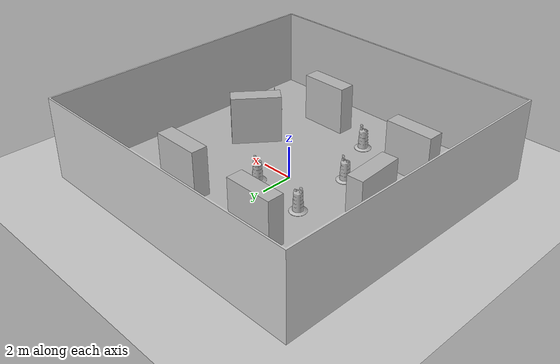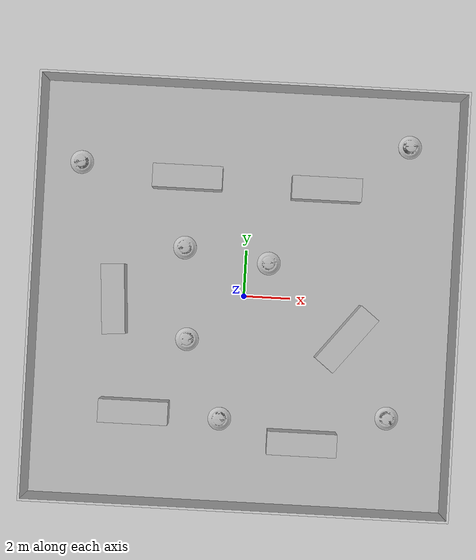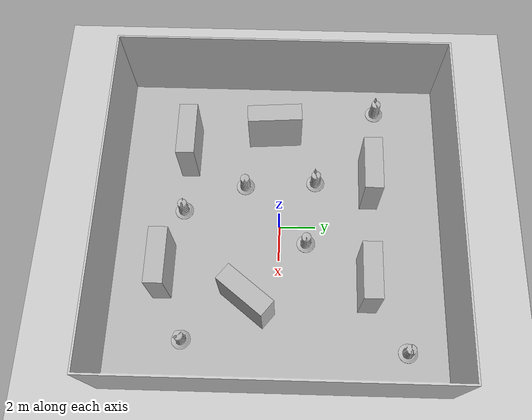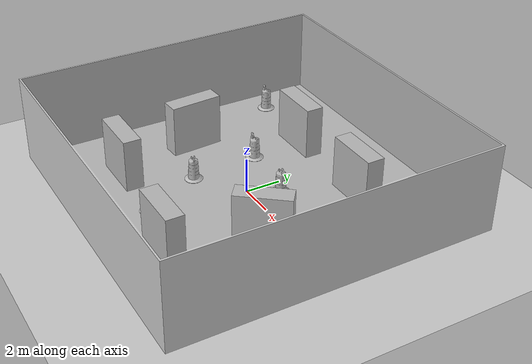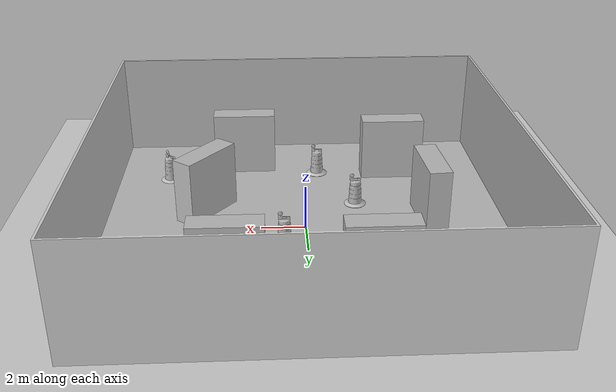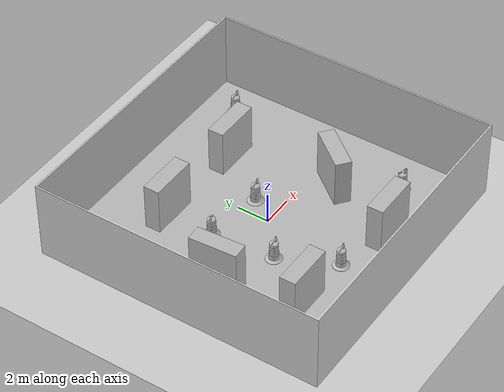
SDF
<sdf version="1.7">
 <world name="default">
  <light name="sun" type="directional">
   <pose>0 0 10 0 -0 0</pose>
   <diffuse>0.8 0.8 0.8 1</diffuse>
   <specular>0.2 0.2 0.2 1</specular>
   <attenuation>
    <range>1000</range>
    <constant>0.9</constant>
    <linear>0.01</linear>
    <quadratic>0.001</quadratic>
   </attenuation>
   <direction>-0.5 0.1 -0.9</direction>
   <spot><inner_angle>0</inner_angle><outer_angle>0</outer_angle><falloff>0</falloff></spot>
  </light>
  <light name="user_directional_light_0" type="directional">
   <pose>3.5 0.5 5 0 -0 0</pose>
   <diffuse>0.5 0.5 0.5 1</diffuse>
   <specular>0.1 0.1 0.1 1</specular>
   <direction>0.1 0.1 -0.9</direction>
   <attenuation>
    <range>20</range>
    <constant>0.5</constant>
    <linear>0.01</linear>
    <quadratic>0.001</quadratic>
   </attenuation>
   <spot><inner_angle>0</inner_angle><outer_angle>0</outer_angle><falloff>0</falloff></spot>
  </light>
  <model name="ground_plane">
   <static>1</static>
   <link name="link">
    <collision name="collision">
     <geometry><plane><normal>0 0 1</normal><size>100 100</size></plane></geometry>
     <surface><friction><ode><mu>100</mu><mu2>50</mu2></ode></friction></surface>
    </collision>
    <visual name="visual">
     <cast_shadows>0</cast_shadows>
     <geometry><plane><normal>0 0 1</normal><size>100 100</size></plane></geometry>
     <material>
      <script><uri>file://media/materials/scripts/gazebo.material</uri><name>Gazebo/Grey</name></script>
     </material>
    </visual>
   </link>
  </model>
  <plugin name="ros_interface_plugin" filename="librotors_gazebo_ros_interface_plugin.so"/>
  <plugin name="gazebo_ros_state" filename="libgazebo_ros_state.so"/>
  <physics type="ode">
   <real_time_update_rate>1000</real_time_update_rate>
   <max_step_size>0.001</max_step_size>
   <real_time_factor>1</real_time_factor>
   <ode>
    <solver>
     <type>quick</type>
     <iters>150</iters>
     <precon_iters>0</precon_iters>
     <sor>1.4</sor>
     <use_dynamic_moi_rescaling>1</use_dynamic_moi_rescaling>
    </solver>
    <constraints>
     <cfm>1e-05</cfm>
     <erp>0.2</erp>
     <contact_max_correcting_vel>2000</contact_max_correcting_vel>
     <contact_surface_layer>0.01</contact_surface_layer>
    </constraints>
   </ode>
  </physics>
  <model name="rtab_map_stage">
   <static>1</static>
   <link name="link">
    <collision name="collision">
     <geometry>
      <mesh><scale>1 1 1</scale><uri>model://rtab_map_stage/meshes/rtab_map_stage.stl</uri></mesh>
     </geometry>
     <surface><friction><ode><mu>1.2</mu><mu2>1.2</mu2></ode></friction></surface>
    </collision>
    <visual name="visual">
     <geometry>
      <mesh><scale>1 1 1</scale><uri>model://rtab_map_stage/meshes/rtab_map_state.dae</uri></mesh>
     </geometry>
    </visual>
   </link>
  </model>
  <model name="construction_barrel">
   <link name="link">
    <inertial>
     <pose>0 0 0.4 0 -0 0</pose>
     <mass>500</mass>
     <inertia><ixx>51.2096</ixx><iyy>51.2096</iyy><izz>25</izz><ixy>0</ixy><ixz>0</ixz><iyz>0</iyz></inertia>
    </inertial>
    <collision name="collision">
     <geometry><mesh><uri>model://construction_barrel/meshes/construction_barrel.dae</uri></mesh></geometry>
    </collision>
    <visual name="visual">
     <geometry><mesh><uri>model://construction_barrel/meshes/construction_barrel.dae</uri></mesh></geometry>
    </visual>
   </link>
   <pose>6.5 -5 0.08 0 0 -0.8</pose>
   <static>1</static>
  </model>
  <model name="construction_barrel1">
   <link name="link">
    <inertial>
     <pose>0 0 0.4 0 -0 0</pose>
     <mass>500</mass>
     <inertia><ixx>51.2096</ixx><iyy>51.2096</iyy><izz>25</izz><ixy>0</ixy><ixz>0</ixz><iyz>0</iyz></inertia>
    </inertial>
    <collision name="collision">
     <geometry><mesh><uri>model://construction_barrel/meshes/construction_barrel.dae</uri></mesh></geometry>
    </collision>
    <visual name="visual">
     <geometry><mesh><uri>model://construction_barrel/meshes/construction_barrel.dae</uri></mesh></geometry>
    </visual>
   </link>
   <pose>-0.8 -5.4 0.1 0 -0 0</pose>
   <static>1</static>
  </model>
  <model name="construction_barrel2">
   <link name="link">
    <inertial>
     <pose>0 0 0.4 0 -0 0</pose>
     <mass>500</mass>
     <inertia><ixx>51.2096</ixx><iyy>51.2096</iyy><izz>25</izz><ixy>0</ixy><ixz>0</ixz><iyz>0</iyz></inertia>
    </inertial>
    <collision name="collision">
     <geometry><mesh><uri>model://construction_barrel/meshes/construction_barrel.dae</uri></mesh></geometry>
    </collision>
    <visual name="visual">
     <geometry><mesh><uri>model://construction_barrel/meshes/construction_barrel.dae</uri></mesh></geometry>
    </visual>
   </link>
   <pose>-2.7 2 0.1 0 0 -2.86</pose>
   <static>1</static>
  </model>
  <model name="construction_barrel3">
   <link name="link">
    <inertial>
     <pose>0 0 0.4 0 -0 0</pose>
     <mass>500</mass>
     <inertia><ixx>51.2096</ixx><iyy>51.2096</iyy><izz>25</izz><ixy>0</ixy><ixz>0</ixz><iyz>0</iyz></inertia>
    </inertial>
    <collision name="collision">
     <geometry><mesh><uri>model://construction_barrel/meshes/construction_barrel.dae</uri></mesh></geometry>
    </collision>
    <visual name="visual">
     <geometry><mesh><uri>model://construction_barrel/meshes/construction_barrel.dae</uri></mesh></geometry>
    </visual>
   </link>
   <pose>1 1.5 0.1 0 -0 0</pose>
   <static>1</static>
  </model>
  <model name="construction_barrel4">
   <link name="link">
    <inertial>
     <pose>0 0 0.4 0 -0 0</pose>
     <mass>500</mass>
     <inertia><ixx>51.2096</ixx><iyy>51.2096</iyy><izz>25</izz><ixy>0</ixy><ixz>0</ixz><iyz>0</iyz></inertia>
    </inertial>
    <collision name="collision">
     <geometry><mesh><uri>model://construction_barrel/meshes/construction_barrel.dae</uri></mesh></geometry>
    </collision>
    <visual name="visual">
     <geometry><mesh><uri>model://construction_barrel/meshes/construction_barrel.dae</uri></mesh></geometry>
    </visual>
   </link>
   <pose>-7.4 5.5 0.1 0 0 -2.86</pose>
   <static>1</static>
  </model>
  <model name="construction_barrel5">
   <link name="link">
    <inertial>
     <pose>0 0 0.4 0 -0 0</pose>
     <mass>500</mass>
     <inertia><ixx>51.2096</ixx><iyy>51.2096</iyy><izz>25</izz><ixy>0</ixy><ixz>0</ixz><iyz>0</iyz></inertia>
    </inertial>
    <collision name="collision">
     <geometry><mesh><uri>model://construction_barrel/meshes/construction_barrel.dae</uri></mesh></geometry>
    </collision>
    <visual name="visual">
     <geometry><mesh><uri>model://construction_barrel/meshes/construction_barrel.dae</uri></mesh></geometry>
    </visual>
   </link>
   <pose>-2.4 -2 0.1 0 -0 0</pose>
   <static>1</static>
  </model>
  <model name="construction_barrel6">
   <link name="link">
    <inertial>
     <pose>0 0 0.4 0 -0 0</pose>
     <mass>500</mass>
     <inertia><ixx>51.2096</ixx><iyy>51.2096</iyy><izz>25</izz><ixy>0</ixy><ixz>0</ixz><iyz>0</iyz></inertia>
    </inertial>
    <collision name="collision">
     <geometry><mesh><uri>model://construction_barrel/meshes/construction_barrel.dae</uri></mesh></geometry>
    </collision>
    <visual name="visual">
     <geometry><mesh><uri>model://construction_barrel/meshes/construction_barrel.dae</uri></mesh></geometry>
    </visual>
   </link>
   <pose>6.9 6.9 0.1 0 -0 0</pose>
   <static>1</static>
  </model>
  <model name="brick_box_3x1x3">
   <static>1</static>
   <link name="chassis">
    <pose>0 0 1.5 0 -0 0</pose>
    <collision name="collision"><geometry><box><size>3 1 3</size></box></geometry></collision>
    <visual name="visual">
     <geometry><mesh><uri>model://brick_box_3x1x3/meshes/simple_box.dae</uri><scale>3 1 3</scale></mesh></geometry>
     <material>
      <script>
       <uri>model://brick_box_3x1x3/materials/scripts</uri>
       <uri>model://brick_box_3x1x3/materials/textures</uri>
       <name>BrickBox/Diffuse</name>
      </script>
     </material>
    </visual>
   </link>
   <pose>3.3 4.8 0.1 0 -0 0</pose>
  </model>
  <model name="brick_box_3x1x3_0">
   <static>1</static>
   <link name="chassis">
    <pose>0 0 1.5 0 -0 0</pose>
    <collision name="collision"><geometry><box><size>3 1 3</size></box></geometry></collision>
    <visual name="visual">
     <geometry><mesh><uri>model://brick_box_3x1x3/meshes/simple_box.dae</uri><scale>3 1 3</scale></mesh></geometry>
     <material>
      <script>
       <uri>model://brick_box_3x1x3/materials/scripts</uri>
       <uri>model://brick_box_3x1x3/materials/textures</uri>
       <name>BrickBox/Diffuse</name>
      </script>
     </material>
    </visual>
   </link>
   <pose>-2.7 5 0.1 0 -0 0</pose>
  </model>
  <model name="brick_box_3x1x3_1">
   <static>1</static>
   <link name="chassis">
    <pose>0 0 1.5 0 -0 0</pose>
    <collision name="collision"><geometry><box><size>3 1 3</size></box></geometry></collision>
    <visual name="visual">
     <geometry><mesh><uri>model://brick_box_3x1x3/meshes/simple_box.dae</uri><scale>3 1 3</scale></mesh></geometry>
     <material>
      <script>
       <uri>model://brick_box_3x1x3/materials/scripts</uri>
       <uri>model://brick_box_3x1x3/materials/textures</uri>
       <name>BrickBox/Diffuse</name>
      </script>
     </material>
    </visual>
   </link>
   <pose>-4.5 -5.2 0.1 0 -0 0</pose>
  </model>
  <model name="brick_box_3x1x3_2">
   <static>1</static>
   <link name="chassis">
    <pose>0 0 1.5 0 -0 0</pose>
    <collision name="collision"><geometry><box><size>3 1 3</size></box></geometry></collision>
    <visual name="visual">
     <geometry><mesh><uri>model://brick_box_3x1x3/meshes/simple_box.dae</uri><scale>3 1 3</scale></mesh></geometry>
     <material>
      <script>
       <uri>model://brick_box_3x1x3/materials/scripts</uri>
       <uri>model://brick_box_3x1x3/materials/textures</uri>
       <name>BrickBox/Diffuse</name>
      </script>
     </material>
    </visual>
   </link>
   <pose>-5.6 -0.4 0.1 0 0 -1.505</pose>
  </model>
  <model name="brick_box_3x1x3_3">
   <static>1</static>
   <link name="chassis">
    <pose>0 0 1.5 0 -0 0</pose>
    <collision name="collision"><geometry><box><size>3 1 3</size></box></geometry></collision>
    <visual name="visual">
     <geometry><mesh><uri>model://brick_box_3x1x3/meshes/simple_box.dae</uri><scale>3 1 3</scale></mesh></geometry>
     <material>
      <script>
       <uri>model://brick_box_3x1x3/materials/scripts</uri>
       <uri>model://brick_box_3x1x3/materials/textures</uri>
       <name>BrickBox/Diffuse</name>
      </script>
     </material>
    </visual>
   </link>
   <pose>4.5 -1.6 0.1 0 -0 0.9</pose>
  </model>
  <model name="brick_box_3x1x3_4">
   <static>1</static>
   <link name="chassis">
    <pose>0 0 1.5 0 -0 0</pose>
    <collision name="collision"><geometry><box><size>3 1 3</size></box></geometry></collision>
    <visual name="visual">
     <geometry><mesh><uri>model://brick_box_3x1x3/meshes/simple_box.dae</uri><scale>3 1 3</scale></mesh></geometry>
     <material>
      <script>
       <uri>model://brick_box_3x1x3/materials/scripts</uri>
       <uri>model://brick_box_3x1x3/materials/textures</uri>
       <name>BrickBox/Diffuse</name>
      </script>
     </material>
    </visual>
   </link>
   <pose>2.8 -6.2 0.1 0 -0 0</pose>
  </model>
  <gravity>0 0 -9.8</gravity>
  <magnetic_field>6e-06 2.3e-05 -4.2e-05</magnetic_field>
  <atmosphere type="adiabatic"/>
  <scene><ambient>0.4 0.4 0.4 1</ambient><background>0.7 0.7 0.7 1</background><shadows>1</shadows></scene>
  <audio><device>default</device></audio>
  <spherical_coordinates>
   <surface_model>EARTH_WGS84</surface_model>
   <latitude_deg>0</latitude_deg>
   <longitude_deg>0</longitude_deg>
   <elevation>0</elevation>
   <heading_deg>0</heading_deg>
  </spherical_coordinates>
 </world>
</sdf>
